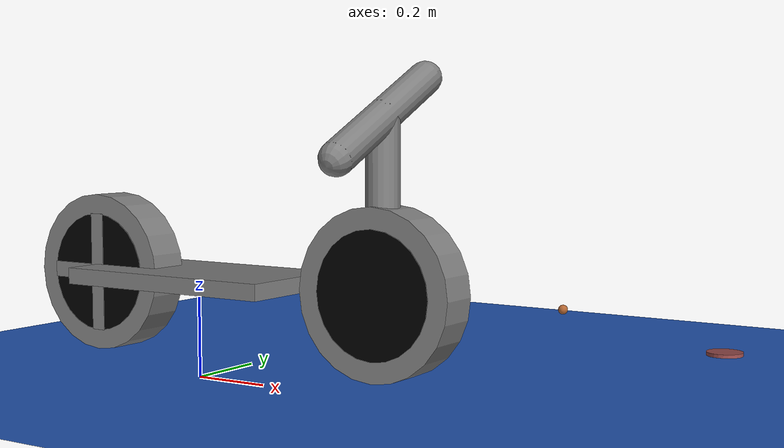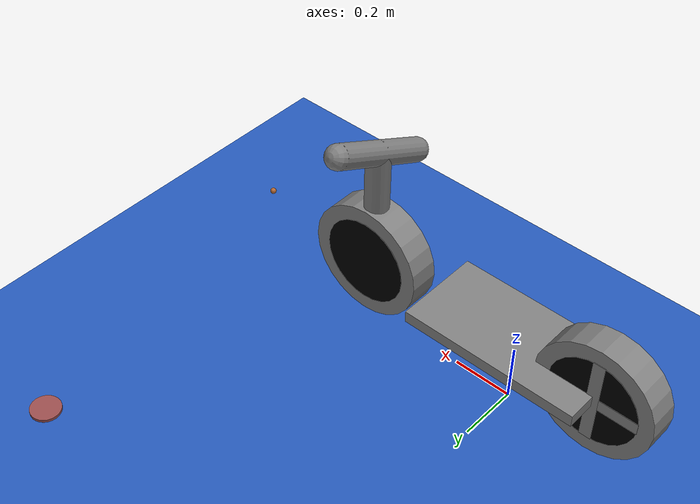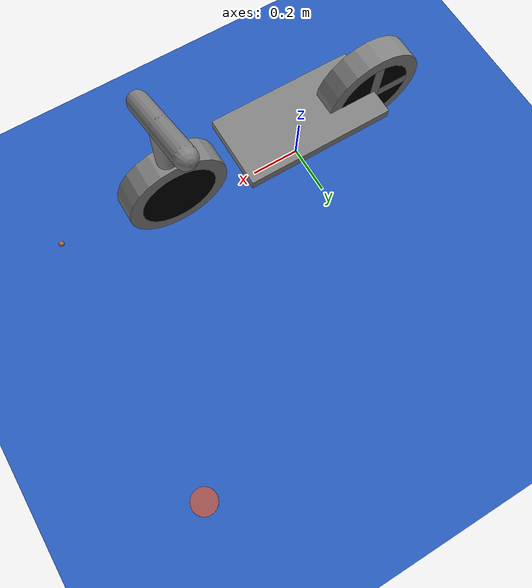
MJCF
<mujoco model="Bike">
  <include file="../common.xml" />
  <include file="bike.xml" />

  <custom>
    <!-- agent -->
    <numeric name="agent_planner" data="2" />
    <numeric name="agent_horizon" data="5" />
    <numeric name="agent_timestep" data="0.04" />
    <numeric name="agent_integrator" data="2" />
    <numeric name="agent_policy_width" data="0.0015" />
    <numeric name="sampling_spline_points" data="10" />
    <numeric name="sampling_exploration" data="0.05" />
    <numeric name="gradient_spline_points" data="10" />
  </custom>

  <worldbody>
    <body name="target" mocap="true" pos="1 1 .005">
      <geom name="target" type="cylinder" size="0.05 0.005" material="target"/>
      <light name="target_light" attenuation="0 0 0" diffuse=".7 .7 .7" pos="0 0 1.5"/>
    </body>
  </worldbody>

  <contact>
    <exclude name="targetground" body1="ground" body2="target"/>
  </contact>

  <sensor>
    <!-- cost -->
    <user name="Control" dim="2" user="0 0.1 0 1" />
    <user name="Distance" dim="2" user="2 1 0 10 0.04" />
    <user name="Stand" dim="1" user="2 100 0 500 0.04" />

    <!-- trace -->
    <framepos name="trace0" objtype="geom" objname="nose"/>

    <!-- residual -->
    <framepos name="nose" objtype="geom" objname="nose"/>
    <framepos name="target" objtype="body" objname="target"/>
    <framepos name="handle" objtype="geom" objname="top_handle"/>
  </sensor>
</mujoco>

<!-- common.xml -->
<mujoco>

    <visual>
        <headlight ambient=".4 .4 .4" diffuse=".8 .8 .8" specular="0.1 0.1 0.1"/>
        <map znear=".01"/>
        <quality shadowsize="2048"/>
        <global elevation="-15"/>
    </visual>

    <asset>
        <texture name="blue_grid" type="2d" builtin="checker" rgb1=".02 .14 .44" rgb2=".27 .55 1" width="300" height="300" mark="edge" markrgb="1 1 1"/>
        <material name="blue_grid" texture="blue_grid" texrepeat="1 1" texuniform="true" reflectance=".2"/>

        <texture name="grey_grid" type="2d" builtin="checker" rgb1=".26 .26 .26" rgb2=".6 .6 .6" width="300" height="300" mark="edge" markrgb="1 1 1"/>
        <material name="grey_grid" texture="grey_grid" texrepeat="1 1" texuniform="true" reflectance=".2"/>
        <texture name="skybox" type="skybox" builtin="gradient" rgb1=".66 .79 1" rgb2=".9 .91 .93" width="800" height="800"/>

        <material name="self" rgba=".7 .5 .3 1"/>
        <material name="self_default" rgba=".7 .5 .3 1"/>
        <material name="self_highlight" rgba="0 .5 .3 1"/>
        <material name="effector" rgba=".7 .4 .2 1"/>
        <material name="effector_default" rgba=".7 .4 .2 1"/>
        <material name="effector_highlight" rgba="0 .5 .3 1"/>
        <material name="decoration" rgba=".2 .6 .3 1"/>
        <material name="eye" rgba="0 .2 1 1"/>
        <material name="target" rgba=".6 .3 .3 1"/>
        <material name="target_default" rgba=".6 .3 .3 1"/>
        <material name="target_highlight" rgba=".6 .3 .3 .4"/>
        <material name="site" rgba=".5 .5 .5 .3"/>
    </asset>

    <size memory="1M"/>

    <statistic extent="0.4" center="0.3 0.1 0"/>

    <visual>
        <quality shadowsize="8192"/>
        <global azimuth="180" elevation="-30"/>
    </visual>

    <default>
        <geom friction="1.0"/>
    </default>

    <compiler angle="radian" autolimits="true"/>

    <asset>
        <mesh name="apple" file="../../shared_assets/apple/apple.obj" />
        <mesh name="apple_contact0" file="../../shared_assets/apple/contact0.stl"  />
        <mesh name="apple_contact1" file="../../shared_assets/apple/contact1.stl"  />

        <mesh name="doorknob" file="../../shared_assets/doorknob/doorknob.obj" />

        <mesh name="flashlight" file="../../shared_assets/flashlight/flashlight.obj" />
        <mesh name="flashlight_contact0" file="../../shared_assets/flashlight/contact0.stl"  />
        <mesh name="flashlight_contact1" file="../../shared_assets/flashlight/contact1.stl"  />

        <mesh name="hammer" file="../../shared_assets/hammer/hammer.obj" />
        <mesh name="hammer_contact0" file="../../shared_assets/hammer/contact0.stl"  />
        <mesh name="hammer_contact1" file="../../shared_assets/hammer/contact1.stl"  />

        <mesh name="phone" file="../../shared_assets/phone/phone.obj" />
        <mesh name="phone_contact0" file="../../shared_assets/phone/contact0.stl"  />
        <mesh name="phone_contact1" file="../../shared_assets/phone/contact1.stl"  />
        <mesh name="phone_contact2" file="../../shared_assets/phone/contact2.stl"  />

        <mesh name="stapler" file="../../shared_assets/stapler/stapler.obj" />
        <mesh name="stapler_contact0" file="../../shared_assets/stapler/contact0.stl"  />
        <mesh name="stapler_contact1" file="../../shared_assets/stapler/contact1.stl"  />
        <mesh name="stapler_contact2" file="../../shared_assets/stapler/contact2.stl"  />
        <mesh name="stapler_contact3" file="../../shared_assets/stapler/contact3.stl"  />
        <mesh name="stapler_contact4" file="../../shared_assets/stapler/contact4.stl"  />

        <mesh name="waterbottle" file="../../shared_assets/waterbottle/waterbottle.obj" />
        <mesh name="waterbottle_contact0" file="../../shared_assets/waterbottle/contact0.stl"  />
        <mesh name="waterbottle_contact1" file="../../shared_assets/waterbottle/contact1.stl"  />
    </asset>

</mujoco>

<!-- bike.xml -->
<mujoco model="bike">
  <option timestep="0.01" integrator="implicit" density="1000">
  </option>

  <default>
    <default class="bike">
      <joint type="hinge" pos="0 -.05 0" axis="0 0 1" limited="true" solreflimit=".05 .3"
             solimplimit="0 .8 .1" armature="1e-6" range="-90 90" stiffness=".001"/>
      <default class="inertial">
        <geom type="box" size=".001 .05 .01" material="self" mass=".01" group="3"/>
      </default>
      <default class="visual">
        <geom type="capsule" size=".01" fromto="0 -.05 0 0 .05 0" mass="0" material="self"/>
      </default>
      <site size=".01" rgba="0 0 0 0"/>
    </default>
    <default class="free">
      <joint limited="false" stiffness="0" armature="0"/>
    </default>
    <general gainprm="2e-3" ctrllimited="true" ctrlrange="-1 1" dyntype="filter" dynprm="0.6"/>
  </default>

	<worldbody>
		<body name='ground' pos='0 0 0'>
			<geom name="ground" type="plane" size="20 20 0.01" material="blue_grid"/>
		</body>

			<body name='torso' pos='0 0 0.25'>
				<joint name='free' type='free' pos='0 0 0' limited='false' damping='0' armature='0'/>
				<geom type='box' size='.30 .15 .02' pos='0 0 0' mass='10'/>
				<geom name="nose" type="sphere" pos="1.0 0 0" size=".01" mass="0" material="effector" euler="0 0 0"/>
				<body pos='-.3 0 0' name='l_wheel'>
					<joint name='joint_1' type='hinge' pos='0 0 0' axis='0 1 0' limited='false' stiffness='0' armature='0' damping='0.1'/>
					<geom name='b_wheel' type='cylinder' fromto='0 -.05 0    0 0.05 0'  size='0.20' condim='6' friction='0.7 0.01 0.001'/>
					<geom name='b_wheel0' type='cylinder' fromto='0 -.051 0    0 0.051 0'  size='0.15' rgba='0 0 0 1' contype='0' conaffinity='0' density='0'/>
					<geom name='b_decoration1' type='box'   size='0.15 0.052 0.02' contype='0' conaffinity='0' density='0'/>
					<geom name='b_decoration2' type='box'   size='0.02 0.052 0.15' contype='0' conaffinity='0' density='0'/>
					<geom name='b_sphere0' type='sphere' size='0.052' mass='0.1'/>
				</body>

				<body pos='.55 0 0' name='handle'>
					<joint name='joint_0' type='hinge' pos='0 0 0' axis='0 0 1' limited='true' range='-45 45' stiffness='0' armature='0' damping='5.0'/>
					<geom name="bottom_handle" type='capsule' size='.04 .2' pos='0 0 0.2'/>
					<geom name="top_handle" type='capsule' size='.04 .2' pos='0 0 0.4' euler='90 0 0'/>

					<body pos='0 0 0' name='f_wheel'>
						<joint name='f_wheel' type='hinge' pos='0 0 0' axis='0 1 0' limited='false' stiffness='0' armature='0' damping='0.1'/>
						<geom name='f_wheel' type='cylinder' fromto='0 -.05 0    0 0.05 0'  size='0.20' condim='6' friction="0.7 0.01 0.001"/>
						<geom name='f_wheel0' type='cylinder' fromto='0 -.051 0    0 0.051 0'  size='0.15' rgba='0 0 0 1' contype='0' conaffinity='0' density='0'/>
					</body>
				</body>
			</body>
	</worldbody>

	<actuator>
		<motor name="0" joint="joint_0" gear="10"/>
		<motor name="1" joint="joint_1" gear="25"/>
	</actuator>

</mujoco>
